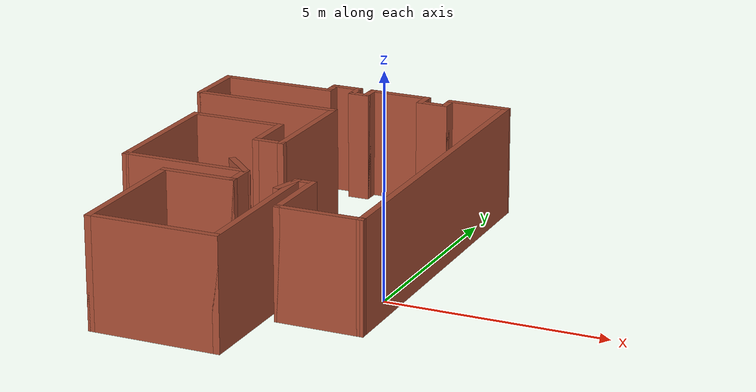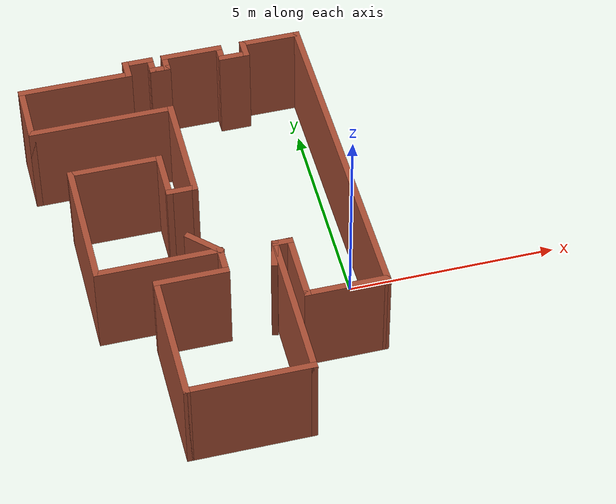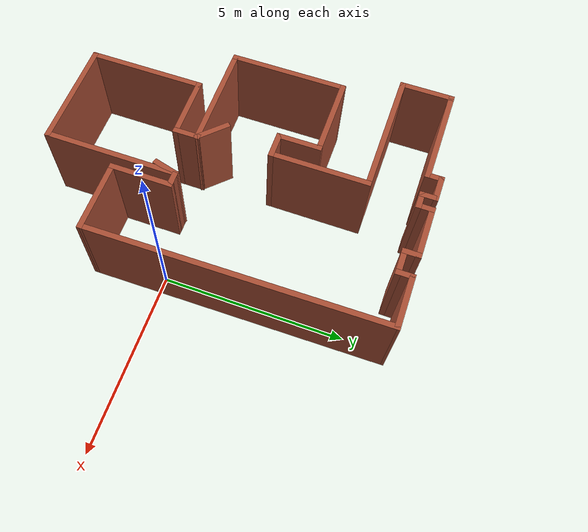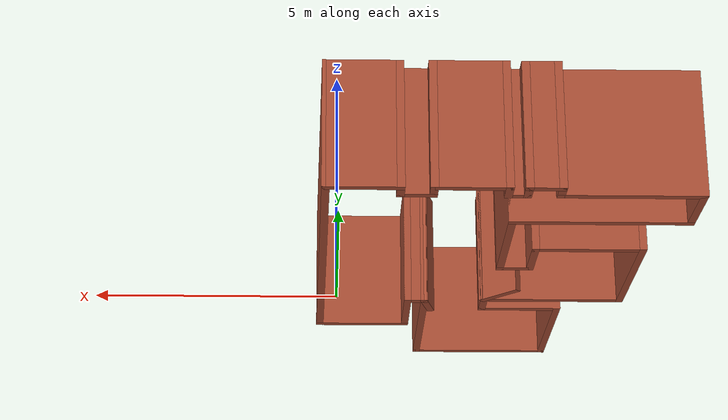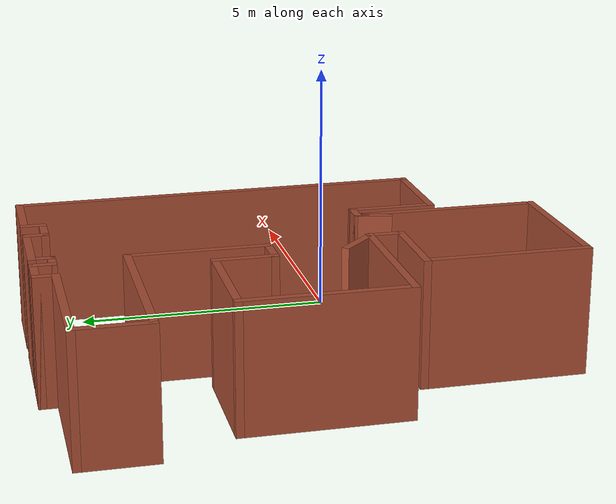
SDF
<?xml version='1.0'?>
<sdf version='1.6'>
  <model name='map_70'>
    <pose frame=''>-3.12936 1.13221 0 0 -0 0</pose>
    <link name='Wall_0'>
      <collision name='Wall_0_Collision'>
        <geometry>
          <box>
            <size>1.5 0.15 2.5</size>
          </box>
        </geometry>
        <pose frame=''>0 0 1.25 0 -0 0</pose>
      </collision>
      <visual name='Wall_0_Visual'>
        <pose frame=''>0 0 1.25 0 -0 0</pose>
        <geometry>
          <box>
            <size>1.5 0.15 2.5</size>
          </box>
        </geometry>
        <material>
          <script>
            <uri>file://media/materials/scripts/gazebo.material</uri>
            <name>Gazebo/Bricks</name>
          </script>
          <ambient>1 1 1 1</ambient>
        </material>
        <meta>
          <layer>0</layer>
        </meta>
      </visual>
      <pose frame=''>2.69953 4.99953 0 0 -0 3.14159</pose>
    </link>
    <link name='Wall_1'>
      <collision name='Wall_1_Collision'>
        <geometry>
          <box>
            <size>0.5 0.15 2.5</size>
          </box>
        </geometry>
        <pose frame=''>0 0 1.25 0 -0 0</pose>
      </collision>
      <visual name='Wall_1_Visual'>
        <pose frame=''>0 0 1.25 0 -0 0</pose>
        <geometry>
          <box>
            <size>0.5 0.15 2.5</size>
          </box>
        </geometry>
        <material>
          <script>
            <uri>file://media/materials/scripts/gazebo.material</uri>
            <name>Gazebo/Bricks</name>
          </script>
          <ambient>1 1 1 1</ambient>
        </material>
        <meta>
          <layer>0</layer>
        </meta>
      </visual>
      <pose frame=''>2.02453 4.82454 0 0 -0 -1.5708</pose>
    </link>
    <link name='Wall_10'>
      <collision name='Wall_10_Collision'>
        <geometry>
          <box>
            <size>2.75 0.15 2.5</size>
          </box>
        </geometry>
        <pose frame=''>0 0 1.25 0 -0 0</pose>
      </collision>
      <visual name='Wall_10_Visual'>
        <pose frame=''>0 0 1.25 0 -0 0</pose>
        <geometry>
          <box>
            <size>2.75 0.15 2.5</size>
          </box>
        </geometry>
        <material>
          <script>
            <uri>file://media/materials/scripts/gazebo.material</uri>
            <name>Gazebo/Bricks</name>
          </script>
          <ambient>1 1 1 1</ambient>
        </material>
        <meta>
          <layer>0</layer>
        </meta>
      </visual>
      <pose frame=''>-2.17547 4.64953 0 0 -0 3.14159</pose>
    </link>
    <link name='Wall_14'>
      <collision name='Wall_14_Collision'>
        <geometry>
          <box>
            <size>1.5 0.15 2.5</size>
          </box>
        </geometry>
        <pose frame=''>0 0 1.25 0 -0 0</pose>
      </collision>
      <visual name='Wall_14_Visual'>
        <pose frame=''>0 0 1.25 0 -0 0</pose>
        <geometry>
          <box>
            <size>1.5 0.15 2.5</size>
          </box>
        </geometry>
        <material>
          <script>
            <uri>file://media/materials/scripts/gazebo.material</uri>
            <name>Gazebo/Bricks</name>
          </script>
          <ambient>1 1 1 1</ambient>
        </material>
        <meta>
          <layer>0</layer>
        </meta>
      </visual>
      <pose frame=''>-3.47547 3.97453 0 0 -0 -1.5708</pose>
    </link>
    <link name='Wall_15'>
      <collision name='Wall_15_Collision'>
        <geometry>
          <box>
            <size>3.5 0.15 2.5</size>
          </box>
        </geometry>
        <pose frame=''>0 0 1.25 0 -0 0</pose>
      </collision>
      <visual name='Wall_15_Visual'>
        <pose frame=''>0 0 1.25 0 -0 0</pose>
        <geometry>
          <box>
            <size>3.5 0.15 2.5</size>
          </box>
        </geometry>
        <material>
          <script>
            <uri>file://media/materials/scripts/gazebo.material</uri>
            <name>Gazebo/Bricks</name>
          </script>
          <ambient>1 1 1 1</ambient>
        </material>
        <meta>
          <layer>0</layer>
        </meta>
      </visual>
      <pose frame=''>-1.80047 3.29953 0 0 -0 0</pose>
    </link>
    <link name='Wall_2'>
      <collision name='Wall_2_Collision'>
        <geometry>
          <box>
            <size>0.75 0.15 2.5</size>
          </box>
        </geometry>
        <pose frame=''>0 0 1.25 0 -0 0</pose>
      </collision>
      <visual name='Wall_2_Visual'>
        <pose frame=''>0 0 1.25 0 -0 0</pose>
        <geometry>
          <box>
            <size>0.75 0.15 2.5</size>
          </box>
        </geometry>
        <material>
          <script>
            <uri>file://media/materials/scripts/gazebo.material</uri>
            <name>Gazebo/Bricks</name>
          </script>
          <ambient>1 1 1 1</ambient>
        </material>
        <meta>
          <layer>0</layer>
        </meta>
      </visual>
      <pose frame=''>1.72453 4.64953 0 0 -0 3.14159</pose>
    </link>
    <link name='Wall_25'>
      <collision name='Wall_25_Collision'>
        <geometry>
          <box>
            <size>2.75 0.15 2.5</size>
          </box>
        </geometry>
        <pose frame=''>0 0 1.25 0 -0 0</pose>
      </collision>
      <visual name='Wall_25_Visual'>
        <pose frame=''>0 0 1.25 0 -0 0</pose>
        <geometry>
          <box>
            <size>2.75 0.15 2.5</size>
          </box>
        </geometry>
        <material>
          <script>
            <uri>file://media/materials/scripts/gazebo.material</uri>
            <name>Gazebo/Bricks</name>
          </script>
          <ambient>1 1 1 1</ambient>
        </material>
        <meta>
          <layer>0</layer>
        </meta>
      </visual>
      <pose frame=''>-0.125466 1.99953 0 0 -0 -1.5708</pose>
    </link>
    <link name='Wall_26'>
      <collision name='Wall_26_Collision'>
        <geometry>
          <box>
            <size>0.75 0.15 2.5</size>
          </box>
        </geometry>
        <pose frame=''>0 0 1.25 0 -0 0</pose>
      </collision>
      <visual name='Wall_26_Visual'>
        <pose frame=''>0 0 1.25 0 -0 0</pose>
        <geometry>
          <box>
            <size>0.75 0.15 2.5</size>
          </box>
        </geometry>
        <material>
          <script>
            <uri>file://media/materials/scripts/gazebo.material</uri>
            <name>Gazebo/Bricks</name>
          </script>
          <ambient>1 1 1 1</ambient>
        </material>
        <meta>
          <layer>0</layer>
        </meta>
      </visual>
      <pose frame=''>-0.425466 0.699534 0 0 -0 3.14159</pose>
    </link>
    <link name='Wall_27'>
      <collision name='Wall_27_Collision'>
        <geometry>
          <box>
            <size>1.25 0.15 2.5</size>
          </box>
        </geometry>
        <pose frame=''>0 0 1.25 0 -0 0</pose>
      </collision>
      <visual name='Wall_27_Visual'>
        <pose frame=''>0 0 1.25 0 -0 0</pose>
        <geometry>
          <box>
            <size>1.25 0.15 2.5</size>
          </box>
        </geometry>
        <material>
          <script>
            <uri>file://media/materials/scripts/gazebo.material</uri>
            <name>Gazebo/Bricks</name>
          </script>
          <ambient>1 1 1 1</ambient>
        </material>
        <meta>
          <layer>0</layer>
        </meta>
      </visual>
      <pose frame=''>-0.725466 1.24953 0 0 -0 1.5708</pose>
    </link>
    <link name='Wall_28'>
      <collision name='Wall_28_Collision'>
        <geometry>
          <box>
            <size>2.25 0.15 2.5</size>
          </box>
        </geometry>
        <pose frame=''>0 0 1.25 0 -0 0</pose>
      </collision>
      <visual name='Wall_28_Visual'>
        <pose frame=''>0 0 1.25 0 -0 0</pose>
        <geometry>
          <box>
            <size>2.25 0.15 2.5</size>
          </box>
        </geometry>
        <material>
          <script>
            <uri>file://media/materials/scripts/gazebo.material</uri>
            <name>Gazebo/Bricks</name>
          </script>
          <ambient>1 1 1 1</ambient>
        </material>
        <meta>
          <layer>0</layer>
        </meta>
      </visual>
      <pose frame=''>-1.77547 1.79953 0 0 -0 3.14159</pose>
    </link>
    <link name='Wall_29'>
      <collision name='Wall_29_Collision'>
        <geometry>
          <box>
            <size>3.25 0.15 2.5</size>
          </box>
        </geometry>
        <pose frame=''>0 0 1.25 0 -0 0</pose>
      </collision>
      <visual name='Wall_29_Visual'>
        <pose frame=''>0 0 1.25 0 -0 0</pose>
        <geometry>
          <box>
            <size>3.25 0.15 2.5</size>
          </box>
        </geometry>
        <material>
          <script>
            <uri>file://media/materials/scripts/gazebo.material</uri>
            <name>Gazebo/Bricks</name>
          </script>
          <ambient>1 1 1 1</ambient>
        </material>
        <meta>
          <layer>0</layer>
        </meta>
      </visual>
      <pose frame=''>-2.82547 0.249534 0 0 -0 -1.5708</pose>
    </link>
    <link name='Wall_3'>
      <collision name='Wall_3_Collision'>
        <geometry>
          <box>
            <size>0.5 0.15 2.5</size>
          </box>
        </geometry>
        <pose frame=''>0 0 1.25 0 -0 0</pose>
      </collision>
      <visual name='Wall_3_Visual'>
        <pose frame=''>0 0 1.25 0 -0 0</pose>
        <geometry>
          <box>
            <size>0.5 0.15 2.5</size>
          </box>
        </geometry>
        <material>
          <script>
            <uri>file://media/materials/scripts/gazebo.material</uri>
            <name>Gazebo/Bricks</name>
          </script>
          <ambient>1 1 1 1</ambient>
        </material>
        <meta>
          <layer>0</layer>
        </meta>
      </visual>
      <pose frame=''>1.42453 4.82454 0 0 -0 1.5708</pose>
    </link>
    <link name='Wall_30'>
      <collision name='Wall_30_Collision'>
        <geometry>
          <box>
            <size>3 0.15 2.5</size>
          </box>
        </geometry>
        <pose frame=''>0 0 1.25 0 -0 0</pose>
      </collision>
      <visual name='Wall_30_Visual'>
        <pose frame=''>0 0 1.25 0 -0 0</pose>
        <geometry>
          <box>
            <size>3 0.15 2.5</size>
          </box>
        </geometry>
        <material>
          <script>
            <uri>file://media/materials/scripts/gazebo.material</uri>
            <name>Gazebo/Bricks</name>
          </script>
          <ambient>1 1 1 1</ambient>
        </material>
        <meta>
          <layer>0</layer>
        </meta>
      </visual>
      <pose frame=''>-1.40047 -1.30047 0 0 -0 0</pose>
    </link>
    <link name='Wall_31'>
      <collision name='Wall_31_Collision'>
        <geometry>
          <box>
            <size>0.75 0.15 2.5</size>
          </box>
        </geometry>
        <pose frame=''>0 0 1.25 0 -0 0</pose>
      </collision>
      <visual name='Wall_31_Visual'>
        <pose frame=''>0 0 1.25 0 -0 0</pose>
        <geometry>
          <box>
            <size>0.75 0.15 2.5</size>
          </box>
        </geometry>
        <material>
          <script>
            <uri>file://media/materials/scripts/gazebo.material</uri>
            <name>Gazebo/Bricks</name>
          </script>
          <ambient>1 1 1 1</ambient>
        </material>
        <meta>
          <layer>0</layer>
        </meta>
      </visual>
      <pose frame=''>0.024534 -1.60047 0 0 -0 -1.5708</pose>
    </link>
    <link name='Wall_32'>
      <collision name='Wall_32_Collision'>
        <geometry>
          <box>
            <size>1.75 0.15 2.5</size>
          </box>
        </geometry>
        <pose frame=''>0 0 1.25 0 -0 0</pose>
      </collision>
      <visual name='Wall_32_Visual'>
        <pose frame=''>0 0 1.25 0 -0 0</pose>
        <geometry>
          <box>
            <size>1.75 0.15 2.5</size>
          </box>
        </geometry>
        <material>
          <script>
            <uri>file://media/materials/scripts/gazebo.material</uri>
            <name>Gazebo/Bricks</name>
          </script>
          <ambient>1 1 1 1</ambient>
        </material>
        <meta>
          <layer>0</layer>
        </meta>
      </visual>
      <pose frame=''>-0.775466 -1.90047 0 0 -0 3.14159</pose>
    </link>
    <link name='Wall_33'>
      <collision name='Wall_33_Collision'>
        <geometry>
          <box>
            <size>3.25 0.15 2.5</size>
          </box>
        </geometry>
        <pose frame=''>0 0 1.25 0 -0 0</pose>
      </collision>
      <visual name='Wall_33_Visual'>
        <pose frame=''>0 0 1.25 0 -0 0</pose>
        <geometry>
          <box>
            <size>3.25 0.15 2.5</size>
          </box>
        </geometry>
        <material>
          <script>
            <uri>file://media/materials/scripts/gazebo.material</uri>
            <name>Gazebo/Bricks</name>
          </script>
          <ambient>1 1 1 1</ambient>
        </material>
        <meta>
          <layer>0</layer>
        </meta>
      </visual>
      <pose frame=''>-1.57547 -3.45047 0 0 -0 -1.5708</pose>
    </link>
    <link name='Wall_36'>
      <collision name='Wall_36_Collision'>
        <geometry>
          <box>
            <size>3 0.15 2.5</size>
          </box>
        </geometry>
        <pose frame=''>0 0 1.25 0 -0 0</pose>
      </collision>
      <visual name='Wall_36_Visual'>
        <pose frame=''>0 0 1.25 0 -0 0</pose>
        <geometry>
          <box>
            <size>3 0.15 2.5</size>
          </box>
        </geometry>
        <material>
          <script>
            <uri>file://media/materials/scripts/gazebo.material</uri>
            <name>Gazebo/Bricks</name>
          </script>
          <ambient>1 1 1 1</ambient>
        </material>
        <meta>
          <layer>0</layer>
        </meta>
      </visual>
      <pose frame=''>-0.150466 -5.00047 0 0 -0 0</pose>
    </link>
    <link name='Wall_37'>
      <collision name='Wall_37_Collision'>
        <geometry>
          <box>
            <size>3.75 0.15 2.5</size>
          </box>
        </geometry>
        <pose frame=''>0 0 1.25 0 -0 0</pose>
      </collision>
      <visual name='Wall_37_Visual'>
        <pose frame=''>0 0 1.25 0 -0 0</pose>
        <geometry>
          <box>
            <size>3.75 0.15 2.5</size>
          </box>
        </geometry>
        <material>
          <script>
            <uri>file://media/materials/scripts/gazebo.material</uri>
            <name>Gazebo/Bricks</name>
          </script>
          <ambient>1 1 1 1</ambient>
        </material>
        <meta>
          <layer>0</layer>
        </meta>
      </visual>
      <pose frame=''>1.27453 -3.20047 0 0 -0 1.5708</pose>
    </link>
    <link name='Wall_4'>
      <collision name='Wall_4_Collision'>
        <geometry>
          <box>
            <size>1.5 0.15 2.5</size>
          </box>
        </geometry>
        <pose frame=''>0 0 1.25 0 -0 0</pose>
      </collision>
      <visual name='Wall_4_Visual'>
        <pose frame=''>0 0 1.25 0 -0 0</pose>
        <geometry>
          <box>
            <size>1.5 0.15 2.5</size>
          </box>
        </geometry>
        <material>
          <script>
            <uri>file://media/materials/scripts/gazebo.material</uri>
            <name>Gazebo/Bricks</name>
          </script>
          <ambient>1 1 1 1</ambient>
        </material>
        <meta>
          <layer>0</layer>
        </meta>
      </visual>
      <pose frame=''>0.749534 4.99953 0 0 -0 3.14159</pose>
    </link>
    <link name='Wall_40'>
      <collision name='Wall_40_Collision'>
        <geometry>
          <box>
            <size>0.5 0.15 2.5</size>
          </box>
        </geometry>
        <pose frame=''>0 0 1.25 0 -0 0</pose>
      </collision>
      <visual name='Wall_40_Visual'>
        <pose frame=''>0 0 1.25 0 -0 0</pose>
        <geometry>
          <box>
            <size>0.5 0.15 2.5</size>
          </box>
        </geometry>
        <material>
          <script>
            <uri>file://media/materials/scripts/gazebo.material</uri>
            <name>Gazebo/Bricks</name>
          </script>
          <ambient>1 1 1 1</ambient>
        </material>
        <meta>
          <layer>0</layer>
        </meta>
      </visual>
      <pose frame=''>1.44953 -1.40047 0 0 -0 0</pose>
    </link>
    <link name='Wall_41'>
      <collision name='Wall_41_Collision'>
        <geometry>
          <box>
            <size>1.75 0.15 2.5</size>
          </box>
        </geometry>
        <pose frame=''>0 0 1.25 0 -0 0</pose>
      </collision>
      <visual name='Wall_41_Visual'>
        <pose frame=''>0 0 1.25 0 -0 0</pose>
        <geometry>
          <box>
            <size>1.75 0.15 2.5</size>
          </box>
        </geometry>
        <material>
          <script>
            <uri>file://media/materials/scripts/gazebo.material</uri>
            <name>Gazebo/Bricks</name>
          </script>
          <ambient>1 1 1 1</ambient>
        </material>
        <meta>
          <layer>0</layer>
        </meta>
      </visual>
      <pose frame=''>1.62453 -2.20047 0 0 -0 -1.5708</pose>
    </link>
    <link name='Wall_42'>
      <collision name='Wall_42_Collision'>
        <geometry>
          <box>
            <size>2 0.15 2.5</size>
          </box>
        </geometry>
        <pose frame=''>0 0 1.25 0 -0 0</pose>
      </collision>
      <visual name='Wall_42_Visual'>
        <pose frame=''>0 0 1.25 0 -0 0</pose>
        <geometry>
          <box>
            <size>2 0.15 2.5</size>
          </box>
        </geometry>
        <material>
          <script>
            <uri>file://media/materials/scripts/gazebo.material</uri>
            <name>Gazebo/Bricks</name>
          </script>
          <ambient>1 1 1 1</ambient>
        </material>
        <meta>
          <layer>0</layer>
        </meta>
      </visual>
      <pose frame=''>2.54953 -3.00047 0 0 -0 0</pose>
    </link>
    <link name='Wall_44'>
      <collision name='Wall_44_Collision'>
        <geometry>
          <box>
            <size>8.15062 0.15 2.5</size>
          </box>
        </geometry>
        <pose frame=''>0 0 1.25 0 -0 0</pose>
      </collision>
      <visual name='Wall_44_Visual'>
        <pose frame=''>0 0 1.25 0 -0 0</pose>
        <geometry>
          <box>
            <size>8.15062 0.15 2.5</size>
          </box>
        </geometry>
        <material>
          <script>
            <uri>file://media/materials/scripts/gazebo.material</uri>
            <name>Gazebo/Bricks</name>
          </script>
          <ambient>1 1 1 1</ambient>
        </material>
        <meta>
          <layer>0</layer>
        </meta>
      </visual>
      <pose frame=''>3.42453 0.999534 0 0 -0 1.5833</pose>
    </link>
    <link name='Wall_46'>
      <collision name='Wall_46_Collision'>
        <geometry>
          <box>
            <size>0.75 0.15 2.5</size>
          </box>
        </geometry>
        <pose frame=''>0 0 1.25 0 -0 0</pose>
      </collision>
      <visual name='Wall_46_Visual'>
        <pose frame=''>0 0 1.25 0 -0 0</pose>
        <geometry>
          <box>
            <size>0.75 0.15 2.5</size>
          </box>
        </geometry>
        <material>
          <script>
            <uri>file://media/materials/scripts/gazebo.material</uri>
            <name>Gazebo/Bricks</name>
          </script>
          <ambient>1 1 1 1</ambient>
        </material>
        <meta>
          <layer>0</layer>
        </meta>
      </visual>
      <pose frame=''>1.19689 -1.69024 0 0 -0 -1.8326</pose>
    </link>
    <link name='Wall_5'>
      <collision name='Wall_5_Collision'>
        <geometry>
          <box>
            <size>0.5 0.15 2.5</size>
          </box>
        </geometry>
        <pose frame=''>0 0 1.25 0 -0 0</pose>
      </collision>
      <visual name='Wall_5_Visual'>
        <pose frame=''>0 0 1.25 0 -0 0</pose>
        <geometry>
          <box>
            <size>0.5 0.15 2.5</size>
          </box>
        </geometry>
        <material>
          <script>
            <uri>file://media/materials/scripts/gazebo.material</uri>
            <name>Gazebo/Bricks</name>
          </script>
          <ambient>1 1 1 1</ambient>
        </material>
        <meta>
          <layer>0</layer>
        </meta>
      </visual>
      <pose frame=''>0.074534 4.82454 0 0 -0 -1.5708</pose>
    </link>
    <link name='Wall_50'>
      <collision name='Wall_50_Collision'>
        <geometry>
          <box>
            <size>1 0.15 2.5</size>
          </box>
        </geometry>
        <pose frame=''>0 0 1.25 0 -0 0</pose>
      </collision>
      <visual name='Wall_50_Visual'>
        <pose frame=''>0 0 1.25 0 -0 0</pose>
        <geometry>
          <box>
            <size>1 0.15 2.5</size>
          </box>
        </geometry>
        <material>
          <script>
            <uri>file://media/materials/scripts/gazebo.material</uri>
            <name>Gazebo/Bricks</name>
          </script>
          <ambient>1 1 1 1</ambient>
        </material>
        <meta>
          <layer>0</layer>
        </meta>
      </visual>
      <pose frame=''>-0.275986 -0.999945 0 0 -0 2.35619</pose>
    </link>
    <link name='Wall_6'>
      <collision name='Wall_6_Collision'>
        <geometry>
          <box>
            <size>0.5 0.15 2.5</size>
          </box>
        </geometry>
        <pose frame=''>0 0 1.25 0 -0 0</pose>
      </collision>
      <visual name='Wall_6_Visual'>
        <pose frame=''>0 0 1.25 0 -0 0</pose>
        <geometry>
          <box>
            <size>0.5 0.15 2.5</size>
          </box>
        </geometry>
        <material>
          <script>
            <uri>file://media/materials/scripts/gazebo.material</uri>
            <name>Gazebo/Bricks</name>
          </script>
          <ambient>1 1 1 1</ambient>
        </material>
        <meta>
          <layer>0</layer>
        </meta>
      </visual>
      <pose frame=''>-0.100466 4.64953 0 0 -0 3.14159</pose>
    </link>
    <link name='Wall_7'>
      <collision name='Wall_7_Collision'>
        <geometry>
          <box>
            <size>0.5 0.15 2.5</size>
          </box>
        </geometry>
        <pose frame=''>0 0 1.25 0 -0 0</pose>
      </collision>
      <visual name='Wall_7_Visual'>
        <pose frame=''>0 0 1.25 0 -0 0</pose>
        <geometry>
          <box>
            <size>0.5 0.15 2.5</size>
          </box>
        </geometry>
        <material>
          <script>
            <uri>file://media/materials/scripts/gazebo.material</uri>
            <name>Gazebo/Bricks</name>
          </script>
          <ambient>1 1 1 1</ambient>
        </material>
        <meta>
          <layer>0</layer>
        </meta>
      </visual>
      <pose frame=''>-0.275466 4.82454 0 0 -0 1.5708</pose>
    </link>
    <link name='Wall_8'>
      <collision name='Wall_8_Collision'>
        <geometry>
          <box>
            <size>0.75 0.15 2.5</size>
          </box>
        </geometry>
        <pose frame=''>0 0 1.25 0 -0 0</pose>
      </collision>
      <visual name='Wall_8_Visual'>
        <pose frame=''>0 0 1.25 0 -0 0</pose>
        <geometry>
          <box>
            <size>0.75 0.15 2.5</size>
          </box>
        </geometry>
        <material>
          <script>
            <uri>file://media/materials/scripts/gazebo.material</uri>
            <name>Gazebo/Bricks</name>
          </script>
          <ambient>1 1 1 1</ambient>
        </material>
        <meta>
          <layer>0</layer>
        </meta>
      </visual>
      <pose frame=''>-0.575466 4.99953 0 0 -0 3.14159</pose>
    </link>
    <link name='Wall_9'>
      <collision name='Wall_9_Collision'>
        <geometry>
          <box>
            <size>0.5 0.15 2.5</size>
          </box>
        </geometry>
        <pose frame=''>0 0 1.25 0 -0 0</pose>
      </collision>
      <visual name='Wall_9_Visual'>
        <pose frame=''>0 0 1.25 0 -0 0</pose>
        <geometry>
          <box>
            <size>0.5 0.15 2.5</size>
          </box>
        </geometry>
        <material>
          <script>
            <uri>file://media/materials/scripts/gazebo.material</uri>
            <name>Gazebo/Bricks</name>
          </script>
          <ambient>1 1 1 1</ambient>
        </material>
        <meta>
          <layer>0</layer>
        </meta>
      </visual>
      <pose frame=''>-0.875466 4.82454 0 0 -0 -1.5708</pose>
    </link>
    <static>1</static>
  </model>
</sdf>
